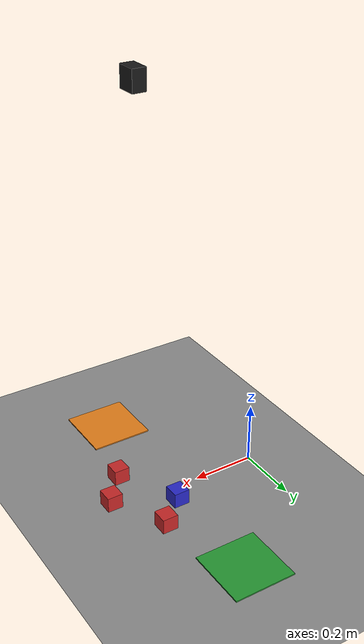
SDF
<?xml version="1.0"?>
<sdf version="1.9">
<world name="empty">
  <physics name="1ms" type="ignored">
    <max_step_size>0.001</max_step_size>
    <real_time_factor>1.0</real_time_factor>
  </physics>
  <plugin filename="gz-sim-physics-system" name="gz::sim::systems::Physics"/>
  <plugin filename="gz-sim-user-commands-system" name="gz::sim::systems::UserCommands"/>
  <plugin filename="gz-sim-scene-broadcaster-system" name="gz::sim::systems::SceneBroadcaster"/>
  <plugin filename="gz-sim-sensors-system" name="gz::sim::systems::Sensors">
    <render_engine>ogre2</render_engine>
  </plugin>

  <light type="directional" name="sun">
    <cast_shadows>false</cast_shadows>
    <pose>0 0 10 0 0 0</pose>
    <diffuse>0.9 0.9 0.9 1</diffuse>
    <specular>0.1 0.1 0.1 1</specular>
    <direction>-0.2 0.1 -1</direction>
  </light>

  <model name="ground_plane">
    <static>true</static>
    <link name="link">
      <collision name="collision">
        <geometry><plane><normal>0 0 1</normal><size>100 100</size></plane></geometry>
      </collision>
      <visual name="visual">
        <geometry><plane><normal>0 0 1</normal><size>100 100</size></plane></geometry>
        <material>
          <ambient>0.55 0.55 0.55 1</ambient>
          <diffuse>0.55 0.55 0.55 1</diffuse>
          <specular>0 0 0 1</specular>
        </material>
      </visual>
    </link>
  </model>
  <model name="overhead_camera">
    <static>true</static>
    <pose>0.4 0.0 1.3 0 1.570796 0</pose>
    <link name="link">
      <visual name="body">
        <geometry><box><size>0.06 0.06 0.04</size></box></geometry>
        <material><ambient>0.1 0.1 0.1 1</ambient><diffuse>0.1 0.1 0.1 1</diffuse></material>
      </visual>
      <sensor name="camera" type="camera">
        <always_on>true</always_on>
        <update_rate>10</update_rate>
        <visualize>false</visualize>
        <topic>overhead/image</topic>
        <camera>
          <horizontal_fov>1.047198</horizontal_fov>
          <image>
            <width>640</width>
            <height>480</height>
            <format>R8G8B8</format>
          </image>
          <clip><near>0.1</near><far>5</far></clip>
        </camera>
      </sensor>
    </link>
  </model>

  <model name="pad_good">
    <pose>0.3 0.4 0.002 0 0 0</pose>
    <static>true</static>
    <link name="link">
      <visual name="visual">
        <geometry><box><size>0.2 0.2 0.004</size></box></geometry>
        <material><ambient>0.15 0.6 0.2 1</ambient><diffuse>0.15 0.6 0.2 1</diffuse></material>
      </visual>
    </link>
  </model>
  <model name="pad_reject">
    <pose>0.3 -0.4 0.002 0 0 0</pose>
    <static>true</static>
    <link name="link">
      <visual name="visual">
        <geometry><box><size>0.2 0.2 0.004</size></box></geometry>
        <material><ambient>0.9 0.5 0.1 1</ambient><diffuse>0.9 0.5 0.1 1</diffuse></material>
      </visual>
    </link>
  </model>
  <model name="block_red_1">
    <pose>0.4 0.14 0.026000000000000002 0 0 0</pose>
    <static>true</static>
    <link name="link">
      <visual name="visual">
        <geometry><box><size>0.05 0.05 0.05</size></box></geometry>
        <material><ambient>0.784 0.157 0.157 1</ambient><diffuse>0.784 0.157 0.157 1</diffuse></material>
      </visual>
    </link>
  </model>
  <model name="block_red_2">
    <pose>0.49 -0.03 0.026000000000000002 0 0 0</pose>
    <static>true</static>
    <link name="link">
      <visual name="visual">
        <geometry><box><size>0.05 0.05 0.05</size></box></geometry>
        <material><ambient>0.784 0.157 0.157 1</ambient><diffuse>0.784 0.157 0.157 1</diffuse></material>
      </visual>
    </link>
  </model>
  <model name="block_red_3">
    <pose>0.41 -0.13 0.026000000000000002 0 0 0</pose>
    <static>true</static>
    <link name="link">
      <visual name="visual">
        <geometry><box><size>0.05 0.05 0.05</size></box></geometry>
        <material><ambient>0.784 0.157 0.157 1</ambient><diffuse>0.784 0.157 0.157 1</diffuse></material>
      </visual>
    </link>
  </model>
  <model name="block_blue_1">
    <pose>0.31 0.06 0.026000000000000002 0 0 0</pose>
    <static>true</static>
    <link name="link">
      <visual name="visual">
        <geometry><box><size>0.05 0.05 0.05</size></box></geometry>
        <material><ambient>0.157 0.157 0.784 1</ambient><diffuse>0.157 0.157 0.784 1</diffuse></material>
      </visual>
    </link>
  </model>
</world>
</sdf>
